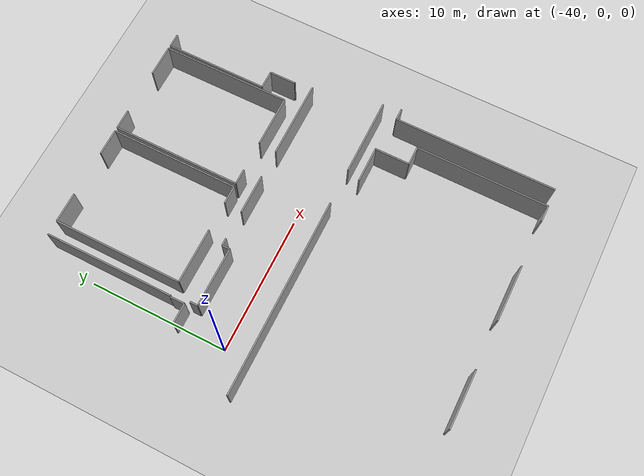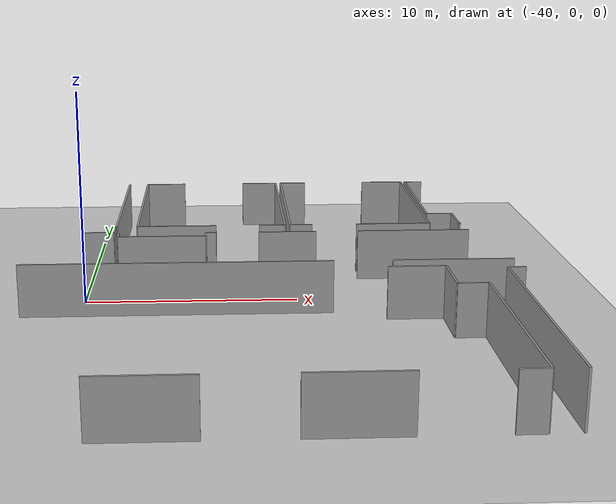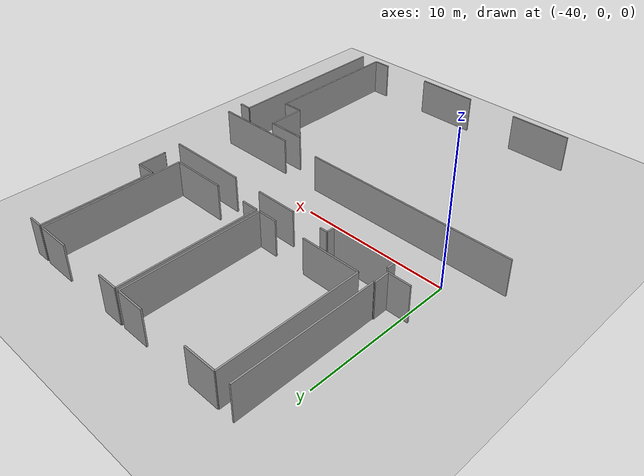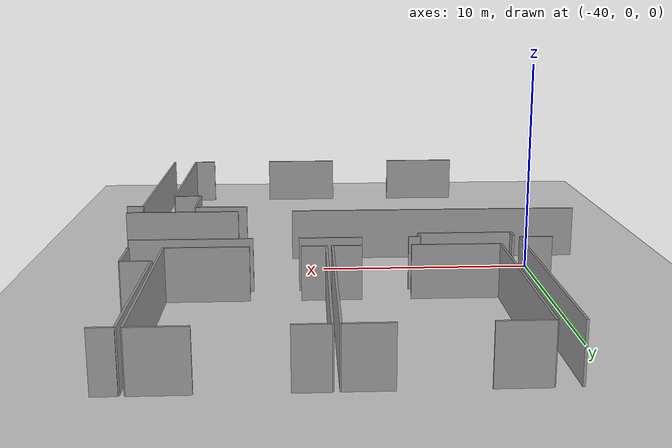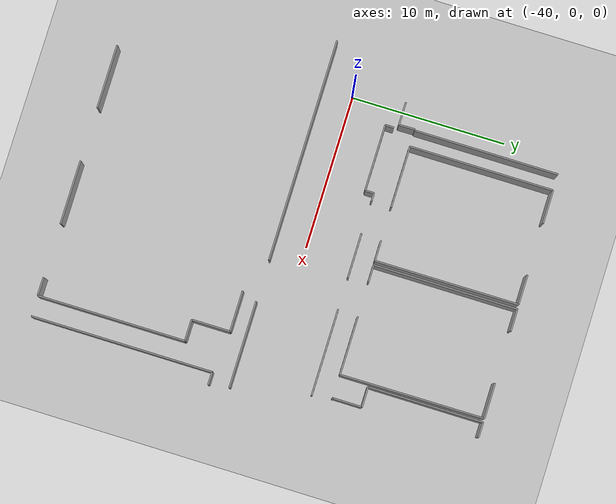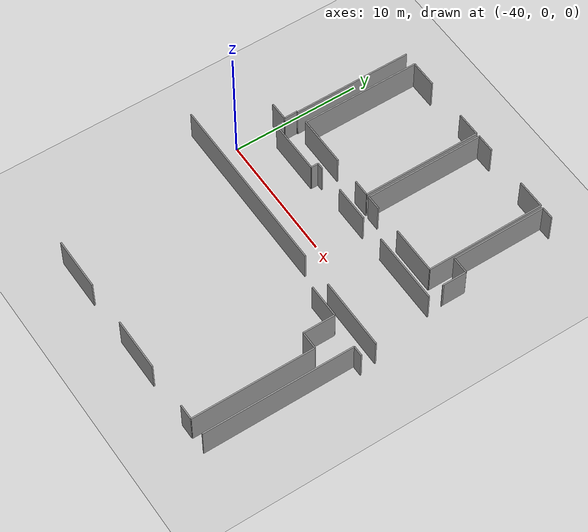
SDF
<sdf version="1.6">
 <world name="default">
  <model name="ground_plane">
   <static>1</static>
   <link name="link">
    <collision name="collision">
     <geometry><plane><normal>0 0 1</normal><size>100 100</size></plane></geometry>
     <surface><friction><ode><mu>100</mu><mu2>50</mu2></ode></friction></surface>
    </collision>
    <visual name="visual">
     <cast_shadows>0</cast_shadows>
     <geometry><plane><normal>0 0 1</normal><size>100 100</size></plane></geometry>
     <material>
      <script><uri>file://media/materials/scripts/gazebo.material</uri><name>Gazebo/Grey</name></script>
     </material>
    </visual>
   </link>
  </model>
  <model name="50056457">
   <static>1</static>
   <link name="Wall_8">
    <collision name="Wall_8_Collision">
     <geometry><box><size>1.18919559896 0.1 2.5</size></box></geometry>
     <pose>0.59459779948 0 1.25 0 0 0</pose>
    </collision>
    <visual name="Wall_8_Visual">
     <pose>0.59459779948 0 1.25 0 0 0</pose>
     <geometry><box><size>1.18919559896 0.1 2.5</size></box></geometry>
     <material>
      <script><uri>file://media/materials/scripts/gazebo.material</uri><name>Gazebo/Grey</name></script>
      <ambient>1 1 1 1</ambient>
     </material>
    </visual>
    <pose>32.7157534537 -30.0129591828 0 0 0 3.14159265359</pose>
   </link>
   <link name="Wall_9">
    <collision name="Wall_9_Collision">
     <geometry><box><size>4.10679044239 0.1 2.5</size></box></geometry>
     <pose>2.0533952212 0 1.25 0 0 0</pose>
    </collision>
    <visual name="Wall_9_Visual">
     <pose>2.0533952212 0 1.25 0 0 0</pose>
     <geometry><box><size>4.10679044239 0.1 2.5</size></box></geometry>
     <material>
      <script><uri>file://media/materials/scripts/gazebo.material</uri><name>Gazebo/Grey</name></script>
      <ambient>1 1 1 1</ambient>
     </material>
    </visual>
    <pose>28.0301195125 -30.0129591828 0 0 0 3.14159265359</pose>
   </link>
   <link name="Wall_10">
    <collision name="Wall_10_Collision">
     <geometry><box><size>4.10662104131 0.1 2.5</size></box></geometry>
     <pose>2.05331052065 0 1.25 0 0 0</pose>
    </collision>
    <visual name="Wall_10_Visual">
     <pose>2.05331052065 0 1.25 0 0 0</pose>
     <geometry><box><size>4.10662104131 0.1 2.5</size></box></geometry>
     <material>
      <script><uri>file://media/materials/scripts/gazebo.material</uri><name>Gazebo/Grey</name></script>
      <ambient>1 1 1 1</ambient>
     </material>
    </visual>
    <pose>20.4268907278 -30.0129591828 0 0 0 3.14159265359</pose>
   </link>
   <link name="Wall_21">
    <collision name="Wall_21_Collision">
     <geometry><box><size>2.6289353989 0.1 2.5</size></box></geometry>
     <pose>1.31446769945 0 1.25 0 0 0</pose>
    </collision>
    <visual name="Wall_21_Visual">
     <pose>1.31446769945 0 1.25 0 0 0</pose>
     <geometry><box><size>2.6289353989 0.1 2.5</size></box></geometry>
     <material>
      <script><uri>file://media/materials/scripts/gazebo.material</uri><name>Gazebo/Grey</name></script>
      <ambient>1 1 1 1</ambient>
     </material>
    </visual>
    <pose>28.6984067828 -17.9595639616 0 0 0 0.0</pose>
   </link>
   <link name="Wall_22">
    <collision name="Wall_22_Collision">
     <geometry><box><size>2.49832716431 0.1 2.5</size></box></geometry>
     <pose>1.24916358216 0 1.25 0 0 0</pose>
    </collision>
    <visual name="Wall_22_Visual">
     <pose>1.24916358216 0 1.25 0 0 0</pose>
     <geometry><box><size>2.49832716431 0.1 2.5</size></box></geometry>
     <material>
      <script><uri>file://media/materials/scripts/gazebo.material</uri><name>Gazebo/Grey</name></script>
      <ambient>1 1 1 1</ambient>
     </material>
    </visual>
    <pose>31.3273421817 -17.9595639616 0 0 0 -1.57079632679</pose>
   </link>
   <link name="Wall_23">
    <collision name="Wall_23_Collision">
     <geometry><box><size>1.38129642648 0.1 2.5</size></box></geometry>
     <pose>0.690648213242 0 1.25 0 0 0</pose>
    </collision>
    <visual name="Wall_23_Visual">
     <pose>0.690648213242 0 1.25 0 0 0</pose>
     <geometry><box><size>1.38129642648 0.1 2.5</size></box></geometry>
     <material>
      <script><uri>file://media/materials/scripts/gazebo.material</uri><name>Gazebo/Grey</name></script>
      <ambient>1 1 1 1</ambient>
     </material>
    </visual>
    <pose>31.3273421817 -20.4578911259 0 0 0 0.0</pose>
   </link>
   <link name="Wall_24">
    <collision name="Wall_24_Collision">
     <geometry><box><size>9.55507070579 0.1 2.5</size></box></geometry>
     <pose>4.7775353529 0 1.25 0 0 0</pose>
    </collision>
    <visual name="Wall_24_Visual">
     <pose>4.7775353529 0 1.25 0 0 0</pose>
     <geometry><box><size>9.55507070579 0.1 2.5</size></box></geometry>
     <material>
      <script><uri>file://media/materials/scripts/gazebo.material</uri><name>Gazebo/Grey</name></script>
      <ambient>1 1 1 1</ambient>
     </material>
    </visual>
    <pose>32.7086386082 -20.4578911259 0 0 0 -1.57005171209</pose>
   </link>
   <link name="Wall_36">
    <collision name="Wall_36_Collision">
     <geometry><box><size>5.60260200063 0.1 2.5</size></box></geometry>
     <pose>2.80130100031 0 1.25 0 0 0</pose>
    </collision>
    <visual name="Wall_36_Visual">
     <pose>2.80130100031 0 1.25 0 0 0</pose>
     <geometry><box><size>5.60260200063 0.1 2.5</size></box></geometry>
     <material>
      <script><uri>file://media/materials/scripts/gazebo.material</uri><name>Gazebo/Grey</name></script>
      <ambient>1 1 1 1</ambient>
     </material>
    </visual>
    <pose>34.6699643411 -16.9711086454 0 0 0 3.14159265359</pose>
   </link>
   <link name="Wall_37">
    <collision name="Wall_37_Collision">
     <geometry><box><size>14.3640259861 0.1 2.5</size></box></geometry>
     <pose>7.18201299306 0 1.25 0 0 0</pose>
    </collision>
    <visual name="Wall_37_Visual">
     <pose>7.18201299306 0 1.25 0 0 0</pose>
     <geometry><box><size>14.3640259861 0.1 2.5</size></box></geometry>
     <material>
      <script><uri>file://media/materials/scripts/gazebo.material</uri><name>Gazebo/Grey</name></script>
      <ambient>1 1 1 1</ambient>
     </material>
    </visual>
    <pose>26.3623658555 -16.9711086454 0 0 0 3.14159265359</pose>
   </link>
   <link name="Wall_42">
    <collision name="Wall_42_Collision">
     <geometry><box><size>0.571559252264 0.1 2.5</size></box></geometry>
     <pose>0.285779626132 0 1.25 0 0 0</pose>
    </collision>
    <visual name="Wall_42_Visual">
     <pose>0.285779626132 0 1.25 0 0 0</pose>
     <geometry><box><size>0.571559252264 0.1 2.5</size></box></geometry>
     <material>
      <script><uri>file://media/materials/scripts/gazebo.material</uri><name>Gazebo/Grey</name></script>
      <ambient>1 1 1 1</ambient>
     </material>
    </visual>
    <pose>16.1749235578 -11.9712356962 0 0 0 -1.57079632679</pose>
   </link>
   <link name="Wall_43">
    <collision name="Wall_43_Collision">
     <geometry><box><size>4.29076001796 0.1 2.5</size></box></geometry>
     <pose>2.14538000898 0 1.25 0 0 0</pose>
    </collision>
    <visual name="Wall_43_Visual">
     <pose>2.14538000898 0 1.25 0 0 0</pose>
     <geometry><box><size>4.29076001796 0.1 2.5</size></box></geometry>
     <material>
      <script><uri>file://media/materials/scripts/gazebo.material</uri><name>Gazebo/Grey</name></script>
      <ambient>1 1 1 1</ambient>
     </material>
    </visual>
    <pose>16.1749235578 -12.5427949485 0 0 0 0.0</pose>
   </link>
   <link name="Wall_44">
    <collision name="Wall_44_Collision">
     <geometry><box><size>0.571559252264 0.1 2.5</size></box></geometry>
     <pose>0.285779626132 0 1.25 0 0 0</pose>
    </collision>
    <visual name="Wall_44_Visual">
     <pose>0.285779626132 0 1.25 0 0 0</pose>
     <geometry><box><size>0.571559252264 0.1 2.5</size></box></geometry>
     <material>
      <script><uri>file://media/materials/scripts/gazebo.material</uri><name>Gazebo/Grey</name></script>
      <ambient>1 1 1 1</ambient>
     </material>
    </visual>
    <pose>20.4656835757 -12.5427949485 0 0 0 1.57079632679</pose>
   </link>
   <link name="Wall_45">
    <collision name="Wall_45_Collision">
     <geometry><box><size>0.522941141594 0.1 2.5</size></box></geometry>
     <pose>0.261470570797 0 1.25 0 0 0</pose>
    </collision>
    <visual name="Wall_45_Visual">
     <pose>0.261470570797 0 1.25 0 0 0</pose>
     <geometry><box><size>0.522941141594 0.1 2.5</size></box></geometry>
     <material>
      <script><uri>file://media/materials/scripts/gazebo.material</uri><name>Gazebo/Grey</name></script>
      <ambient>1 1 1 1</ambient>
     </material>
    </visual>
    <pose>20.4656835757 -11.9712356962 0 0 0 0.0</pose>
   </link>
   <link name="Wall_46">
    <collision name="Wall_46_Collision">
     <geometry><box><size>2.87202595225 0.1 2.5</size></box></geometry>
     <pose>1.43601297612 0 1.25 0 0 0</pose>
    </collision>
    <visual name="Wall_46_Visual">
     <pose>1.43601297612 0 1.25 0 0 0</pose>
     <geometry><box><size>2.87202595225 0.1 2.5</size></box></geometry>
     <material>
      <script><uri>file://media/materials/scripts/gazebo.material</uri><name>Gazebo/Grey</name></script>
      <ambient>1 1 1 1</ambient>
     </material>
    </visual>
    <pose>23.0988540017 -11.9712356962 0 0 0 0.0</pose>
   </link>
   <link name="Wall_47">
    <collision name="Wall_47_Collision">
     <geometry><box><size>5.58617009563 0.1 2.5</size></box></geometry>
     <pose>2.79308504781 0 1.25 0 0 0</pose>
    </collision>
    <visual name="Wall_47_Visual">
     <pose>2.79308504781 0 1.25 0 0 0</pose>
     <geometry><box><size>5.58617009563 0.1 2.5</size></box></geometry>
     <material>
      <script><uri>file://media/materials/scripts/gazebo.material</uri><name>Gazebo/Grey</name></script>
      <ambient>1 1 1 1</ambient>
     </material>
    </visual>
    <pose>28.0368955558 -11.9712356962 0 0 0 0.0</pose>
   </link>
   <link name="Wall_53">
    <collision name="Wall_53_Collision">
     <geometry><box><size>1.47209540669 0.1 2.5</size></box></geometry>
     <pose>0.736047703345 0 1.25 0 0 0</pose>
    </collision>
    <visual name="Wall_53_Visual">
     <pose>0.736047703345 0 1.25 0 0 0</pose>
     <geometry><box><size>1.47209540669 0.1 2.5</size></box></geometry>
     <material>
      <script><uri>file://media/materials/scripts/gazebo.material</uri><name>Gazebo/Grey</name></script>
      <ambient>1 1 1 1</ambient>
     </material>
    </visual>
    <pose>15.9133682864 -11.7291615493 0 0 0 3.14159265359</pose>
   </link>
   <link name="Wall_61">
    <collision name="Wall_61_Collision">
     <geometry><box><size>9.32671539771 0.1 2.5</size></box></geometry>
     <pose>4.66335769886 0 1.25 0 0 0</pose>
    </collision>
    <visual name="Wall_61_Visual">
     <pose>4.66335769886 0 1.25 0 0 0</pose>
     <geometry><box><size>9.32671539771 0.1 2.5</size></box></geometry>
     <material>
      <script><uri>file://media/materials/scripts/gazebo.material</uri><name>Gazebo/Grey</name></script>
      <ambient>1 1 1 1</ambient>
     </material>
    </visual>
    <pose>15.9672378306 -1.35436165437 0 0 0 -1.57079632679</pose>
   </link>
   <link name="Wall_62">
    <collision name="Wall_62_Collision">
     <geometry><box><size>0.0721648611335 0.1 2.5</size></box></geometry>
     <pose>0.0360824305667 0 1.25 0 0 0</pose>
    </collision>
    <visual name="Wall_62_Visual">
     <pose>0.0360824305667 0 1.25 0 0 0</pose>
     <geometry><box><size>0.0721648611335 0.1 2.5</size></box></geometry>
     <material>
      <script><uri>file://media/materials/scripts/gazebo.material</uri><name>Gazebo/Grey</name></script>
      <ambient>1 1 1 1</ambient>
     </material>
    </visual>
    <pose>15.9672378306 -10.6810770521 0 0 0 3.14159265359</pose>
   </link>
   <link name="Wall_63">
    <collision name="Wall_63_Collision">
     <geometry><box><size>1.04824416622 0.1 2.5</size></box></geometry>
     <pose>0.524122083111 0 1.25 0 0 0</pose>
    </collision>
    <visual name="Wall_63_Visual">
     <pose>0.524122083111 0 1.25 0 0 0</pose>
     <geometry><box><size>1.04824416622 0.1 2.5</size></box></geometry>
     <material>
      <script><uri>file://media/materials/scripts/gazebo.material</uri><name>Gazebo/Grey</name></script>
      <ambient>1 1 1 1</ambient>
     </material>
    </visual>
    <pose>15.8950729695 -10.6810770521 0 0 0 -1.55334214344</pose>
   </link>
   <link name="Wall_64">
    <collision name="Wall_64_Collision">
     <geometry><box><size>1.31065617509 0.1 2.5</size></box></geometry>
     <pose>0.655328087546 0 1.25 0 0 0</pose>
    </collision>
    <visual name="Wall_64_Visual">
     <pose>0.655328087546 0 1.25 0 0 0</pose>
     <geometry><box><size>1.31065617509 0.1 2.5</size></box></geometry>
     <material>
      <script><uri>file://media/materials/scripts/gazebo.material</uri><name>Gazebo/Grey</name></script>
      <ambient>1 1 1 1</ambient>
     </material>
    </visual>
    <pose>24.4848936585 -10.6797218434 0 0 0 3.14159265359</pose>
   </link>
   <link name="Wall_65">
    <collision name="Wall_65_Collision">
     <geometry><box><size>3.98414405868 0.1 2.5</size></box></geometry>
     <pose>1.99207202934 0 1.25 0 0 0</pose>
    </collision>
    <visual name="Wall_65_Visual">
     <pose>1.99207202934 0 1.25 0 0 0</pose>
     <geometry><box><size>3.98414405868 0.1 2.5</size></box></geometry>
     <material>
      <script><uri>file://media/materials/scripts/gazebo.material</uri><name>Gazebo/Grey</name></script>
      <ambient>1 1 1 1</ambient>
     </material>
    </visual>
    <pose>20.9987887823 -10.6797218434 0 0 0 3.14159265359</pose>
   </link>
   <link name="Wall_66">
    <collision name="Wall_66_Collision">
     <geometry><box><size>9.30096643318 0.1 2.5</size></box></geometry>
     <pose>4.65048321659 0 1.25 0 0 0</pose>
    </collision>
    <visual name="Wall_66_Visual">
     <pose>4.65048321659 0 1.25 0 0 0</pose>
     <geometry><box><size>9.30096643318 0.1 2.5</size></box></geometry>
     <material>
      <script><uri>file://media/materials/scripts/gazebo.material</uri><name>Gazebo/Grey</name></script>
      <ambient>1 1 1 1</ambient>
     </material>
    </visual>
    <pose>17.0146447236 -10.6797218434 0 0 0 1.57079632679</pose>
   </link>
   <link name="Wall_67">
    <collision name="Wall_67_Collision">
     <geometry><box><size>2.15325715931 0.1 2.5</size></box></geometry>
     <pose>1.07662857966 0 1.25 0 0 0</pose>
    </collision>
    <visual name="Wall_67_Visual">
     <pose>1.07662857966 0 1.25 0 0 0</pose>
     <geometry><box><size>2.15325715931 0.1 2.5</size></box></geometry>
     <material>
      <script><uri>file://media/materials/scripts/gazebo.material</uri><name>Gazebo/Grey</name></script>
      <ambient>1 1 1 1</ambient>
     </material>
    </visual>
    <pose>17.0146447236 -1.37875541025 0 0 0 0.0</pose>
   </link>
   <link name="Wall_68">
    <collision name="Wall_68_Collision">
     <geometry><box><size>1.92151647849 0.1 2.5</size></box></geometry>
     <pose>0.960758239245 0 1.25 0 0 0</pose>
    </collision>
    <visual name="Wall_68_Visual">
     <pose>0.960758239245 0 1.25 0 0 0</pose>
     <geometry><box><size>1.92151647849 0.1 2.5</size></box></geometry>
     <material>
      <script><uri>file://media/materials/scripts/gazebo.material</uri><name>Gazebo/Grey</name></script>
      <ambient>1 1 1 1</ambient>
     </material>
    </visual>
    <pose>22.5374588144 -1.37875541025 0 0 0 0.0</pose>
   </link>
   <link name="Wall_69">
    <collision name="Wall_69_Collision">
     <geometry><box><size>9.30100254557 0.1 2.5</size></box></geometry>
     <pose>4.65050127279 0 1.25 0 0 0</pose>
    </collision>
    <visual name="Wall_69_Visual">
     <pose>4.65050127279 0 1.25 0 0 0</pose>
     <geometry><box><size>9.30100254557 0.1 2.5</size></box></geometry>
     <material>
      <script><uri>file://media/materials/scripts/gazebo.material</uri><name>Gazebo/Grey</name></script>
      <ambient>1 1 1 1</ambient>
     </material>
    </visual>
    <pose>24.4589752929 -1.37875541025 0 0 0 -1.56800970255</pose>
   </link>
   <link name="Wall_70">
    <collision name="Wall_70_Collision">
     <geometry><box><size>3.74952355946 0.1 2.5</size></box></geometry>
     <pose>1.87476177973 0 1.25 0 0 0</pose>
    </collision>
    <visual name="Wall_70_Visual">
     <pose>1.87476177973 0 1.25 0 0 0</pose>
     <geometry><box><size>3.74952355946 0.1 2.5</size></box></geometry>
     <material>
      <script><uri>file://media/materials/scripts/gazebo.material</uri><name>Gazebo/Grey</name></script>
      <ambient>1 1 1 1</ambient>
     </material>
    </visual>
    <pose>31.874338277 -10.6739622066 0 0 0 3.14159265359</pose>
   </link>
   <link name="Wall_71">
    <collision name="Wall_71_Collision">
     <geometry><box><size>1.12397618221 0.1 2.5</size></box></geometry>
     <pose>0.561988091104 0 1.25 0 0 0</pose>
    </collision>
    <visual name="Wall_71_Visual">
     <pose>0.561988091104 0 1.25 0 0 0</pose>
     <geometry><box><size>1.12397618221 0.1 2.5</size></box></geometry>
     <material>
      <script><uri>file://media/materials/scripts/gazebo.material</uri><name>Gazebo/Grey</name></script>
      <ambient>1 1 1 1</ambient>
     </material>
    </visual>
    <pose>25.8705945131 -10.6739622066 0 0 0 3.14159265359</pose>
   </link>
   <link name="Wall_72">
    <collision name="Wall_72_Collision">
     <geometry><box><size>9.30994469055 0.1 2.5</size></box></geometry>
     <pose>4.65497234527 0 1.25 0 0 0</pose>
    </collision>
    <visual name="Wall_72_Visual">
     <pose>4.65497234527 0 1.25 0 0 0</pose>
     <geometry><box><size>9.30994469055 0.1 2.5</size></box></geometry>
     <material>
      <script><uri>file://media/materials/scripts/gazebo.material</uri><name>Gazebo/Grey</name></script>
      <ambient>1 1 1 1</ambient>
     </material>
    </visual>
    <pose>24.7466183309 -10.6739622066 0 0 0 1.57079632679</pose>
   </link>
   <link name="Wall_73">
    <collision name="Wall_73_Collision">
     <geometry><box><size>1.43008393824 0.1 2.5</size></box></geometry>
     <pose>0.715041969118 0 1.25 0 0 0</pose>
    </collision>
    <visual name="Wall_73_Visual">
     <pose>0.715041969118 0 1.25 0 0 0</pose>
     <geometry><box><size>1.43008393824 0.1 2.5</size></box></geometry>
     <material>
      <script><uri>file://media/materials/scripts/gazebo.material</uri><name>Gazebo/Grey</name></script>
      <ambient>1 1 1 1</ambient>
     </material>
    </visual>
    <pose>24.7466183309 -1.36401751607 0 0 0 0.0</pose>
   </link>
   <link name="Wall_74">
    <collision name="Wall_74_Collision">
     <geometry><box><size>2.28488180039 0.1 2.5</size></box></geometry>
     <pose>1.1424409002 0 1.25 0 0 0</pose>
    </collision>
    <visual name="Wall_74_Visual">
     <pose>1.1424409002 0 1.25 0 0 0</pose>
     <geometry><box><size>2.28488180039 0.1 2.5</size></box></geometry>
     <material>
      <script><uri>file://media/materials/scripts/gazebo.material</uri><name>Gazebo/Grey</name></script>
      <ambient>1 1 1 1</ambient>
     </material>
    </visual>
    <pose>29.5455815963 -1.36401751607 0 0 0 0.0</pose>
   </link>
   <link name="Wall_75">
    <collision name="Wall_75_Collision">
     <geometry><box><size>9.31004807432 0.1 2.5</size></box></geometry>
     <pose>4.65502403716 0 1.25 0 0 0</pose>
    </collision>
    <visual name="Wall_75_Visual">
     <pose>4.65502403716 0 1.25 0 0 0</pose>
     <geometry><box><size>9.31004807432 0.1 2.5</size></box></geometry>
     <material>
      <script><uri>file://media/materials/scripts/gazebo.material</uri><name>Gazebo/Grey</name></script>
      <ambient>1 1 1 1</ambient>
     </material>
    </visual>
    <pose>31.8304633967 -1.36401751607 0 0 0 -1.56608367199</pose>
   </link>
   <link name="Wall_77">
    <collision name="Wall_77_Collision">
     <geometry><box><size>0.0779244979375 0.1 2.5</size></box></geometry>
     <pose>0.0389622489688 0 1.25 0 0 0</pose>
    </collision>
    <visual name="Wall_77_Visual">
     <pose>0.0389622489688 0 1.25 0 0 0</pose>
     <geometry><box><size>0.0779244979375 0.1 2.5</size></box></geometry>
     <material>
      <script><uri>file://media/materials/scripts/gazebo.material</uri><name>Gazebo/Grey</name></script>
      <ambient>1 1 1 1</ambient>
     </material>
    </visual>
    <pose>33.4670472544 -10.6881918975 0 0 0 3.14159265359</pose>
   </link>
   <link name="Wall_78">
    <collision name="Wall_78_Collision">
     <geometry><box><size>1.89661451937 0.1 2.5</size></box></geometry>
     <pose>0.948307259683 0 1.25 0 0 0</pose>
    </collision>
    <visual name="Wall_78_Visual">
     <pose>0.948307259683 0 1.25 0 0 0</pose>
     <geometry><box><size>1.89661451937 0.1 2.5</size></box></geometry>
     <material>
      <script><uri>file://media/materials/scripts/gazebo.material</uri><name>Gazebo/Grey</name></script>
      <ambient>1 1 1 1</ambient>
     </material>
    </visual>
    <pose>33.3891227565 -10.6881918975 0 0 0 1.57079632679</pose>
   </link>
   <link name="Wall_79">
    <collision name="Wall_79_Collision">
     <geometry><box><size>1.31438299891 0.1 2.5</size></box></geometry>
     <pose>0.657191499454 0 1.25 0 0 0</pose>
    </collision>
    <visual name="Wall_79_Visual">
     <pose>0.657191499454 0 1.25 0 0 0</pose>
     <geometry><box><size>1.31438299891 0.1 2.5</size></box></geometry>
     <material>
      <script><uri>file://media/materials/scripts/gazebo.material</uri><name>Gazebo/Grey</name></script>
      <ambient>1 1 1 1</ambient>
     </material>
    </visual>
    <pose>33.3891227565 -8.79157737818 0 0 0 3.14159265359</pose>
   </link>
   <link name="Wall_80">
    <collision name="Wall_80_Collision">
     <geometry><box><size>7.41620998958 0.1 2.5</size></box></geometry>
     <pose>3.70810499479 0 1.25 0 0 0</pose>
    </collision>
    <visual name="Wall_80_Visual">
     <pose>3.70810499479 0 1.25 0 0 0</pose>
     <geometry><box><size>7.41620998958 0.1 2.5</size></box></geometry>
     <material>
      <script><uri>file://media/materials/scripts/gazebo.material</uri><name>Gazebo/Grey</name></script>
      <ambient>1 1 1 1</ambient>
     </material>
    </visual>
    <pose>32.0747397576 -8.79157737818 0 0 0 1.57079632679</pose>
   </link>
   <link name="Wall_81">
    <collision name="Wall_81_Collision">
     <geometry><box><size>0.982187476178 0.1 2.5</size></box></geometry>
     <pose>0.491093738089 0 1.25 0 0 0</pose>
    </collision>
    <visual name="Wall_81_Visual">
     <pose>0.491093738089 0 1.25 0 0 0</pose>
     <geometry><box><size>0.982187476178 0.1 2.5</size></box></geometry>
     <material>
      <script><uri>file://media/materials/scripts/gazebo.material</uri><name>Gazebo/Grey</name></script>
      <ambient>1 1 1 1</ambient>
     </material>
    </visual>
    <pose>32.0747397576 -1.3753673886 0 0 0 0.0</pose>
   </link>
   <link name="Wall_100">
    <collision name="Wall_100_Collision">
     <geometry><box><size>11.7398338175 0.1 2.5</size></box></geometry>
     <pose>5.86991690877 0 1.25 0 0 0</pose>
    </collision>
    <visual name="Wall_100_Visual">
     <pose>5.86991690877 0 1.25 0 0 0</pose>
     <geometry><box><size>11.7398338175 0.1 2.5</size></box></geometry>
     <material>
      <script><uri>file://media/materials/scripts/gazebo.material</uri><name>Gazebo/Grey</name></script>
      <ambient>1 1 1 1</ambient>
     </material>
    </visual>
    <pose>34.0477541651 -30.0143143915 0 0 0 1.57079632679</pose>
   </link>
   <link name="Wall_101">
    <collision name="Wall_101_Collision">
     <geometry><box><size>0.829387699787 0.1 2.5</size></box></geometry>
     <pose>0.414693849894 0 1.25 0 0 0</pose>
    </collision>
    <visual name="Wall_101_Visual">
     <pose>0.414693849894 0 1.25 0 0 0</pose>
     <geometry><box><size>0.829387699787 0.1 2.5</size></box></geometry>
     <material>
      <script><uri>file://media/materials/scripts/gazebo.material</uri><name>Gazebo/Grey</name></script>
      <ambient>1 1 1 1</ambient>
     </material>
    </visual>
    <pose>34.0477541651 -18.2744805739 0 0 0 0.0</pose>
   </link>
   <pose>-54.8 15.0363365322 0 0 0 0</pose>
  </model>
 </world>
</sdf>
